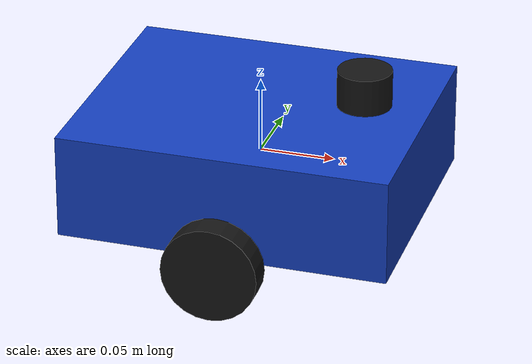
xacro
<?xml version="1.0"?>
<robot xmlns:xacro="http://www.ros.org/wiki/xacro" name="scoutnav">
  <material name="body_blue"><color rgba="0.08 0.25 0.75 1"/></material>
  <material name="wheel_black"><color rgba="0.08 0.08 0.08 1"/></material>
  <link name="base_link">
    <inertial><mass value="1.2"/><inertia ixx="0.012" ixy="0" ixz="0" iyy="0.020" iyz="0" izz="0.025"/></inertial>
    <visual><geometry><box size="0.22 0.18 0.07"/></geometry><material name="body_blue"/></visual>
    <collision><geometry><box size="0.22 0.18 0.07"/></geometry></collision>
  </link>
  <xacro:macro name="wheel" params="name y">
    <link name="${name}">
      <inertial><mass value="0.12"/><inertia ixx="0.0003" ixy="0" ixz="0" iyy="0.0003" iyz="0" izz="0.0003"/></inertial>
      <visual><origin rpy="1.5708 0 0"/><geometry><cylinder radius="0.032" length="0.018"/></geometry><material name="wheel_black"/></visual>
      <collision><origin rpy="1.5708 0 0"/><geometry><cylinder radius="0.032" length="0.018"/></geometry></collision>
    </link>
    <joint name="${name}_joint" type="continuous">
      <parent link="base_link"/><child link="${name}"/><origin xyz="0 ${y} -0.035"/><axis xyz="0 1 0"/>
    </joint>
  </xacro:macro>
  <xacro:wheel name="left_wheel" y="0.105"/>
  <xacro:wheel name="right_wheel" y="-0.105"/>
  <link name="caster_link">
    <inertial><mass value="0.03"/><inertia ixx="0.00002" ixy="0" ixz="0" iyy="0.00002" iyz="0" izz="0.00002"/></inertial>
    <visual><geometry><sphere radius="0.018"/></geometry><material name="wheel_black"/></visual>
    <collision><geometry><sphere radius="0.018"/></geometry></collision>
  </link>
  <joint name="caster_joint" type="fixed"><parent link="base_link"/><child link="caster_link"/><origin xyz="-0.075 0 -0.045"/></joint>
  <link name="laser_link"><visual><geometry><cylinder radius="0.018" length="0.025"/></geometry><material name="wheel_black"/></visual></link>
  <joint name="laser_joint" type="fixed"><parent link="base_link"/><child link="laser_link"/><origin xyz="0.07 0 0.055"/></joint>
  <gazebo>
    <plugin filename="gz-sim-diff-drive-system" name="gz::sim::systems::DiffDrive">
      <left_joint>left_wheel_joint</left_joint>
      <right_joint>right_wheel_joint</right_joint>
      <wheel_separation>0.21</wheel_separation>
      <wheel_radius>0.032</wheel_radius>
      <topic>/cmd_vel</topic>
      <odom_topic>/odom</odom_topic>
      <frame_id>odom</frame_id>
      <child_frame_id>base_link</child_frame_id>
      <odom_publish_frequency>30</odom_publish_frequency>
    </plugin>
  </gazebo>
  <gazebo reference="laser_link">
    <sensor name="front_laser" type="gpu_lidar">
      <pose>0 0 0 0 0 0</pose><update_rate>10</update_rate><topic>/scan</topic>
      <lidar><scan><horizontal><samples>181</samples><resolution>1</resolution><min_angle>-1.5708</min_angle><max_angle>1.5708</max_angle></horizontal></scan>
        <range><min>0.08</min><max>5.0</max><resolution>0.01</resolution></range></lidar>
      <always_on>true</always_on><visualize>true</visualize>
    </sensor>
  </gazebo>
</robot>
